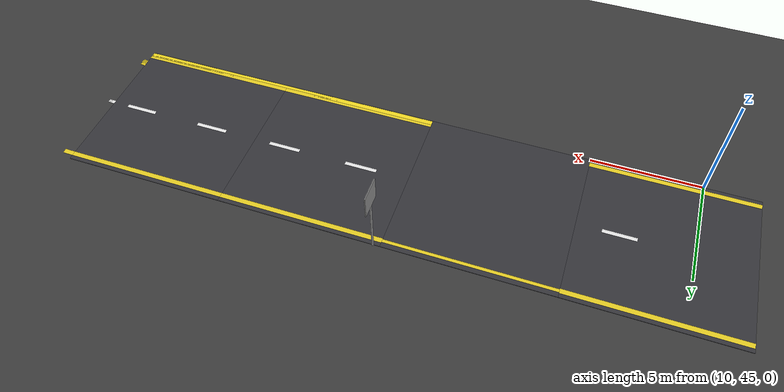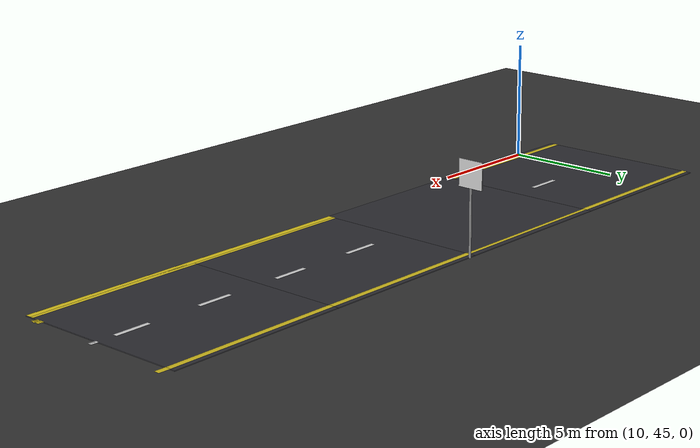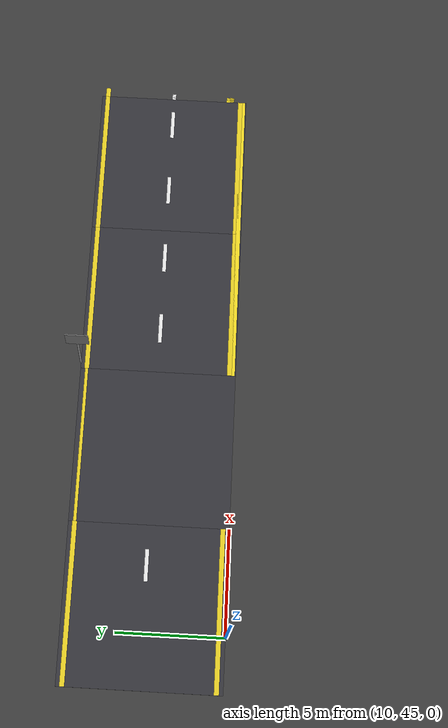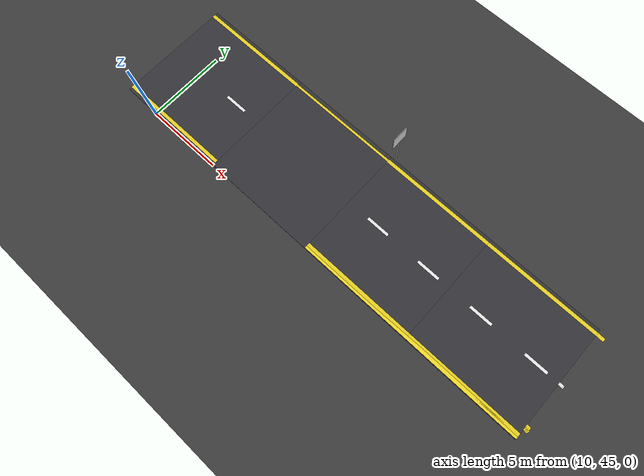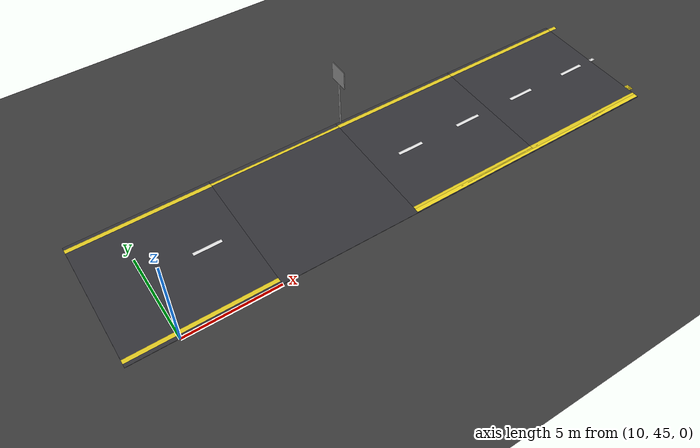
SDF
<sdf version="1.7">
 <world name="compact_city">
  <model name="ground_plane">
   <static>1</static>
   <pose>0 0 0.01 0 -0 0</pose>
   <link name="link">
    <collision name="collision">
     <geometry><plane><normal>0 0 1</normal><size>200 200</size></plane></geometry>
    </collision>
    <visual name="visual">
     <geometry><plane><normal>0 0 1</normal><size>200 200</size></plane></geometry>
     <material>
      <ambient>0.2 0.2 0.2 1</ambient>
      <diffuse>0.25 0.25 0.25 1</diffuse>
      <specular>0.1 0.1 0.1 1</specular>
     </material>
    </visual>
   </link>
  </model>
  <model name="road_tile_8">
   <static>1</static>
   <pose>11.25 48.75 0.015 0 -0 0</pose>
   <link name="link">
    <collision name="collision"><geometry><box><size>7.5 7.5 0.03</size></box></geometry></collision>
    <visual name="visual">
     <geometry><box><size>7.5 7.5 0.03</size></box></geometry>
     <material>
      <ambient>0.18 0.18 0.2 1</ambient>
      <diffuse>0.22 0.22 0.24 1</diffuse>
      <specular>0.1 0.1 0.1 1</specular>
     </material>
    </visual>
   </link>
  </model>
  <model name="road_tile_9">
   <static>1</static>
   <pose>18.75 48.75 0.015 0 -0 0</pose>
   <link name="link">
    <collision name="collision"><geometry><box><size>7.5 7.5 0.03</size></box></geometry></collision>
    <visual name="visual">
     <geometry><box><size>7.5 7.5 0.03</size></box></geometry>
     <material>
      <ambient>0.18 0.18 0.2 1</ambient>
      <diffuse>0.22 0.22 0.24 1</diffuse>
      <specular>0.1 0.1 0.1 1</specular>
     </material>
    </visual>
   </link>
  </model>
  <model name="road_tile_10">
   <static>1</static>
   <pose>26.25 48.75 0.015 0 -0 0</pose>
   <link name="link">
    <collision name="collision"><geometry><box><size>7.5 7.5 0.03</size></box></geometry></collision>
    <visual name="visual">
     <geometry><box><size>7.5 7.5 0.03</size></box></geometry>
     <material>
      <ambient>0.18 0.18 0.2 1</ambient>
      <diffuse>0.22 0.22 0.24 1</diffuse>
      <specular>0.1 0.1 0.1 1</specular>
     </material>
    </visual>
   </link>
  </model>
  <model name="road_tile_11">
   <static>1</static>
   <pose>33.75 48.75 0.015 0 -0 0</pose>
   <link name="link">
    <collision name="collision"><geometry><box><size>7.5 7.5 0.03</size></box></geometry></collision>
    <visual name="visual">
     <geometry><box><size>7.5 7.5 0.03</size></box></geometry>
     <material>
      <ambient>0.18 0.18 0.2 1</ambient>
      <diffuse>0.22 0.22 0.24 1</diffuse>
      <specular>0.1 0.1 0.1 1</specular>
     </material>
    </visual>
   </link>
  </model>
  <model name="el_211">
   <static>1</static>
   <pose>11.25 45.3 0.038 0 -0 0</pose>
   <link name="link">
    <visual name="v">
     <geometry><box><size>7.5 0.225 0.002</size></box></geometry>
     <material><ambient>0.9 0.8 0.1 1</ambient><diffuse>0.95 0.85 0.15 1</diffuse></material>
    </visual>
   </link>
  </model>
  <model name="el_212">
   <static>1</static>
   <pose>11.25 52.2 0.038 0 -0 0</pose>
   <link name="link">
    <visual name="v">
     <geometry><box><size>7.5 0.225 0.002</size></box></geometry>
     <material><ambient>0.9 0.8 0.1 1</ambient><diffuse>0.95 0.85 0.15 1</diffuse></material>
    </visual>
   </link>
  </model>
  <model name="el_235">
   <static>1</static>
   <pose>26.25 45.3 0.038 0 -0 0</pose>
   <link name="link">
    <visual name="v">
     <geometry><box><size>7.5 0.225 0.002</size></box></geometry>
     <material><ambient>0.9 0.8 0.1 1</ambient><diffuse>0.95 0.85 0.15 1</diffuse></material>
    </visual>
   </link>
  </model>
  <model name="el_236">
   <static>1</static>
   <pose>26.25 52.2 0.038 0 -0 0</pose>
   <link name="link">
    <visual name="v">
     <geometry><box><size>7.5 0.225 0.002</size></box></geometry>
     <material><ambient>0.9 0.8 0.1 1</ambient><diffuse>0.95 0.85 0.15 1</diffuse></material>
    </visual>
   </link>
  </model>
  <model name="el_243">
   <static>1</static>
   <pose>33.75 45.3 0.038 0 -0 0</pose>
   <link name="link">
    <visual name="v">
     <geometry><box><size>7.5 0.225 0.002</size></box></geometry>
     <material><ambient>0.9 0.8 0.1 1</ambient><diffuse>0.95 0.85 0.15 1</diffuse></material>
    </visual>
   </link>
  </model>
  <model name="el_244">
   <static>1</static>
   <pose>33.75 52.2 0.038 0 -0 0</pose>
   <link name="link">
    <visual name="v">
     <geometry><box><size>7.5 0.225 0.002</size></box></geometry>
     <material><ambient>0.9 0.8 0.1 1</ambient><diffuse>0.95 0.85 0.15 1</diffuse></material>
    </visual>
   </link>
  </model>
  <model name="ld_80">
   <static>1</static>
   <pose>13.125 48.75 0.038 0 -0 0</pose>
   <link name="link">
    <visual name="v">
     <geometry><box><size>1.5 0.18 0.002</size></box></geometry>
     <material><ambient>1 1 1 1</ambient><diffuse>0.95 0.95 0.95 1</diffuse></material>
    </visual>
   </link>
  </model>
  <model name="ld_81">
   <static>1</static>
   <pose>24.75 48.75 0.038 0 -0 0</pose>
   <link name="link">
    <visual name="v">
     <geometry><box><size>1.5 0.18 0.002</size></box></geometry>
     <material><ambient>1 1 1 1</ambient><diffuse>0.95 0.95 0.95 1</diffuse></material>
    </visual>
   </link>
  </model>
  <model name="ld_82">
   <static>1</static>
   <pose>28.5 48.75 0.038 0 -0 0</pose>
   <link name="link">
    <visual name="v">
     <geometry><box><size>1.5 0.18 0.002</size></box></geometry>
     <material><ambient>1 1 1 1</ambient><diffuse>0.95 0.95 0.95 1</diffuse></material>
    </visual>
   </link>
  </model>
  <model name="ld_83">
   <static>1</static>
   <pose>32.25 48.75 0.038 0 -0 0</pose>
   <link name="link">
    <visual name="v">
     <geometry><box><size>1.5 0.18 0.002</size></box></geometry>
     <material><ambient>1 1 1 1</ambient><diffuse>0.95 0.95 0.95 1</diffuse></material>
    </visual>
   </link>
  </model>
  <model name="ld_84">
   <static>1</static>
   <pose>36 48.75 0.038 0 -0 0</pose>
   <link name="link">
    <visual name="v">
     <geometry><box><size>1.5 0.18 0.002</size></box></geometry>
     <material><ambient>1 1 1 1</ambient><diffuse>0.95 0.95 0.95 1</diffuse></material>
    </visual>
   </link>
  </model>
  <model name="ie_335">
   <static>1</static>
   <pose>18.75 52.2 0.038 0 -0 0</pose>
   <link name="link">
    <visual name="v">
     <geometry><box><size>7.5 0.15 0.002</size></box></geometry>
     <material><ambient>0.9 0.8 0.1 1</ambient><diffuse>0.95 0.85 0.15 1</diffuse></material>
    </visual>
   </link>
  </model>
  <model name="ac_449">
   <static>1</static>
   <pose>37.6227 48.748 0.038 0 -0 3.1089</pose>
   <link name="link">
    <visual name="v">
     <geometry><box><size>0.260117 0.18 0.002</size></box></geometry>
     <material><ambient>1 1 1 1</ambient><diffuse>0.95 0.95 0.95 1</diffuse></material>
    </visual>
   </link>
  </model>
  <model name="ai_469">
   <static>1</static>
   <pose>37.7176 45.7178 0.038 0 -0 2.8471</pose>
   <link name="link">
    <visual name="v">
     <geometry><box><size>0.06 0.225 0.002</size></box></geometry>
     <material><ambient>0.9 0.8 0.1 1</ambient><diffuse>0.95 0.85 0.15 1</diffuse></material>
    </visual>
   </link>
  </model>
  <model name="ai_470">
   <static>1</static>
   <pose>37.6703 45.7304 0.038 0 -0 2.9125</pose>
   <link name="link">
    <visual name="v">
     <geometry><box><size>0.06 0.225 0.002</size></box></geometry>
     <material><ambient>0.9 0.8 0.1 1</ambient><diffuse>0.95 0.85 0.15 1</diffuse></material>
    </visual>
   </link>
  </model>
  <model name="ai_471">
   <static>1</static>
   <pose>37.6221 45.74 0.038 0 -0 2.978</pose>
   <link name="link">
    <visual name="v">
     <geometry><box><size>0.06 0.225 0.002</size></box></geometry>
     <material><ambient>0.9 0.8 0.1 1</ambient><diffuse>0.95 0.85 0.15 1</diffuse></material>
    </visual>
   </link>
  </model>
  <model name="ai_472">
   <static>1</static>
   <pose>37.5735 45.7464 0.038 0 -0 3.0434</pose>
   <link name="link">
    <visual name="v">
     <geometry><box><size>0.06 0.225 0.002</size></box></geometry>
     <material><ambient>0.9 0.8 0.1 1</ambient><diffuse>0.95 0.85 0.15 1</diffuse></material>
    </visual>
   </link>
  </model>
  <model name="ai_473">
   <static>1</static>
   <pose>37.5246 45.7495 0.038 0 -0 3.1089</pose>
   <link name="link">
    <visual name="v">
     <geometry><box><size>0.06 0.225 0.002</size></box></geometry>
     <material><ambient>0.9 0.8 0.1 1</ambient><diffuse>0.95 0.85 0.15 1</diffuse></material>
    </visual>
   </link>
  </model>
  <model name="ao_497">
   <static>1</static>
   <pose>37.7356 52.1961 0.038 0 -0 3.1089</pose>
   <link name="link">
    <visual name="v">
     <geometry><box><size>0.494712 0.225 0.002</size></box></geometry>
     <material><ambient>0.9 0.8 0.1 1</ambient><diffuse>0.95 0.85 0.15 1</diffuse></material>
    </visual>
   </link>
  </model>
  <model name="yolo_traffic_sign_stop_middle_intersection">
   <static>1</static>
   <pose>22.7982 52.5041 0 0 -0 1.5708</pose>
   <link name="link">
    <collision name="pole_collision">
     <pose>0 0 1.35 0 -0 0</pose>
     <geometry><cylinder><radius>0.045</radius><length>2.7</length></cylinder></geometry>
    </collision>
    <visual name="pole_visual">
     <pose>0 0 1.35 0 -0 0</pose>
     <geometry><cylinder><radius>0.045</radius><length>2.7</length></cylinder></geometry>
     <material><ambient>0.45 0.45 0.45 1</ambient><diffuse>0.55 0.55 0.55 1</diffuse></material>
    </visual>
    <collision name="panel_collision">
     <pose>0 0 3.24 0 -0 0</pose>
     <geometry><box><size>1.08 0.045 1.08</size></box></geometry>
    </collision>
    <visual name="panel_back_visual">
     <pose>0 0 3.24 0 -0 0</pose>
     <geometry><box><size>1.08 0.045 1.08</size></box></geometry>
     <material><ambient>0.42 0.42 0.42 1</ambient><diffuse>0.5 0.5 0.5 1</diffuse></material>
    </visual>
    <visual name="panel_front_visual">
     <pose>0 -0.026 3.24 0 -0 0</pose>
     <geometry><box><size>1.08 0.006 1.08</size></box></geometry>
     <material>
      <script>
       <uri>file:///home/ranim/autoCar_ws/models/traffic_sign_assets/materials/scripts</uri>
       <uri>file:///home/ranim/autoCar_ws/models/traffic_sign_assets/materials/textures</uri>
       <name>TrafficSigns/StopDur</name>
      </script>
     </material>
    </visual>
   </link>
  </model>
  <model name="edge_h_5">
   <static>1</static>
   <pose>30 45.15 0.038 0 -0 0</pose>
   <link name="link">
    <visual name="visual">
     <geometry><box><size>15 0.225 0.002</size></box></geometry>
     <material><ambient>0.95 0.85 0.1 1</ambient><diffuse>1 0.9 0.15 1</diffuse></material>
    </visual>
   </link>
  </model>
  <model name="arc_c_280">
   <static>1</static>
   <pose>37.6472 48.7441 0.038 0 -0 3.1023</pose>
   <link name="link">
    <visual name="visual">
     <geometry><box><size>0.324449 0.18 0.002</size></box></geometry>
     <material><ambient>1 1 1 1</ambient><diffuse>0.95 0.95 0.95 1</diffuse></material>
    </visual>
   </link>
  </model>
  <model name="arc_in_298">
   <static>1</static>
   <pose>37.6755 45.882 0.038 0 -0 2.9452</pose>
   <link name="link">
    <visual name="visual">
     <geometry><box><size>0.100668 0.225 0.002</size></box></geometry>
     <material><ambient>0.95 0.85 0.1 1</ambient><diffuse>1 0.9 0.15 1</diffuse></material>
    </visual>
   </link>
  </model>
  <model name="arc_in_299">
   <static>1</static>
   <pose>37.6058 45.8931 0.038 0 -0 3.0238</pose>
   <link name="link">
    <visual name="visual">
     <geometry><box><size>0.100668 0.225 0.002</size></box></geometry>
     <material><ambient>0.95 0.85 0.1 1</ambient><diffuse>1 0.9 0.15 1</diffuse></material>
    </visual>
   </link>
  </model>
  <model name="arc_in_300">
   <static>1</static>
   <pose>37.5352 45.8987 0.038 0 -0 3.1023</pose>
   <link name="link">
    <visual name="visual">
     <geometry><box><size>0.100668 0.225 0.002</size></box></geometry>
     <material><ambient>0.95 0.85 0.1 1</ambient><diffuse>1 0.9 0.15 1</diffuse></material>
    </visual>
   </link>
  </model>
 </world>
</sdf>
